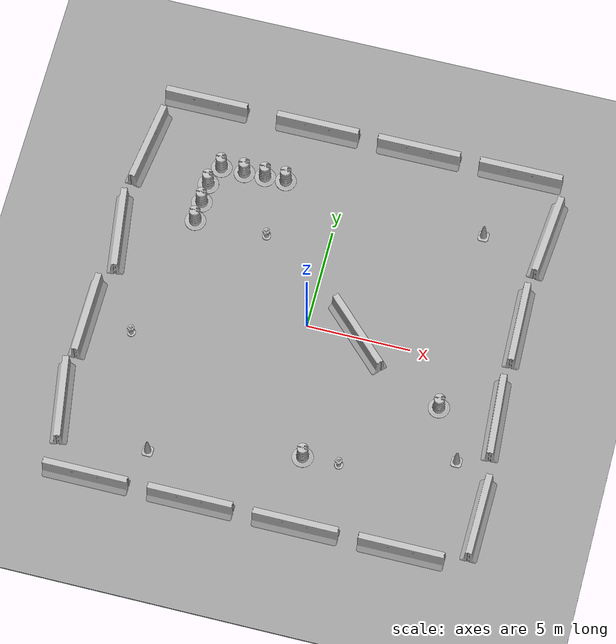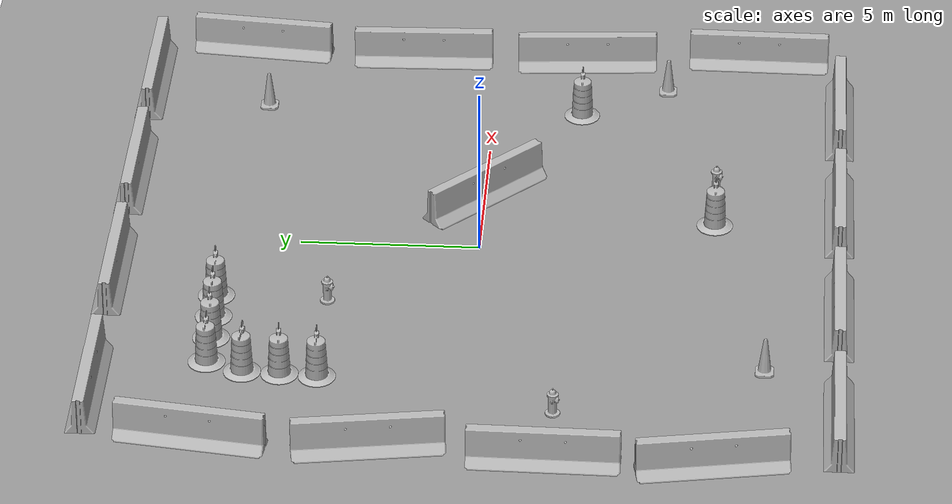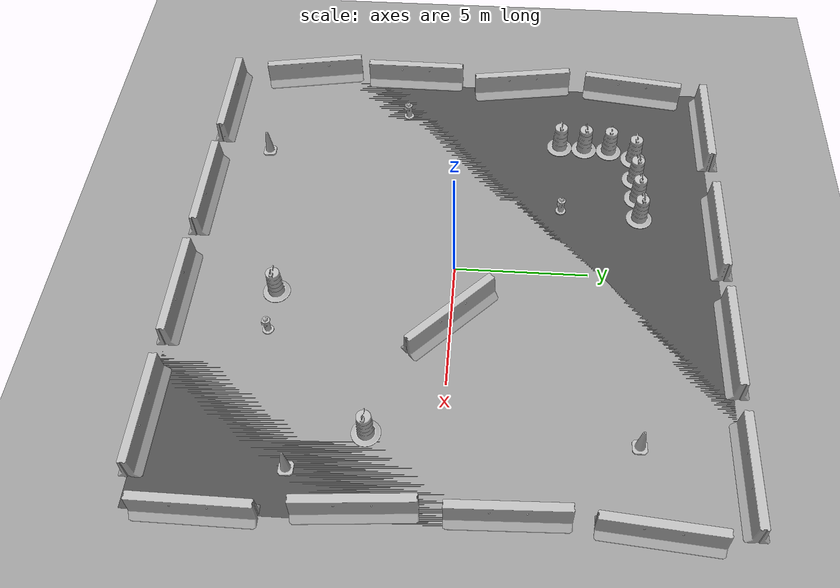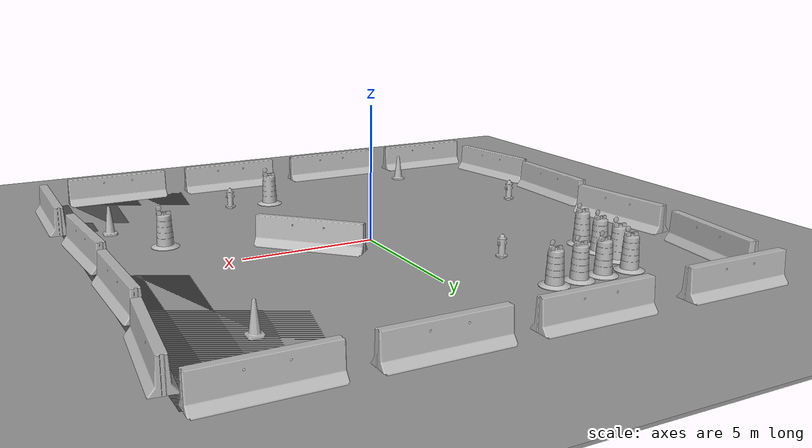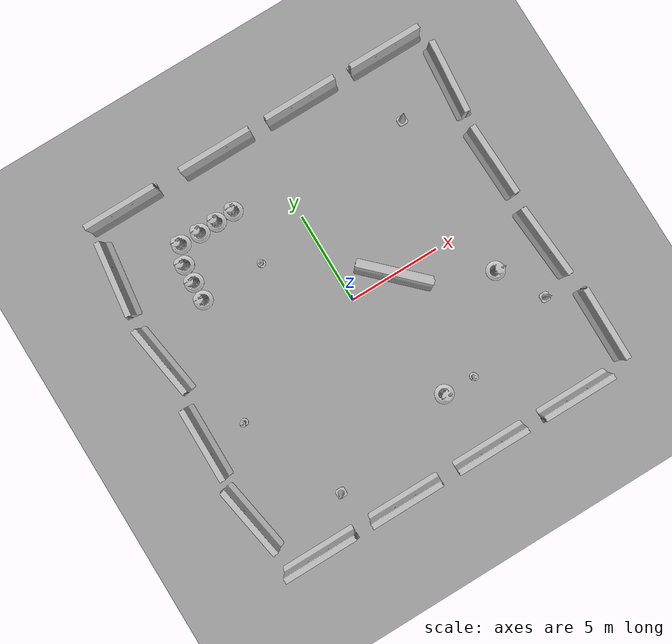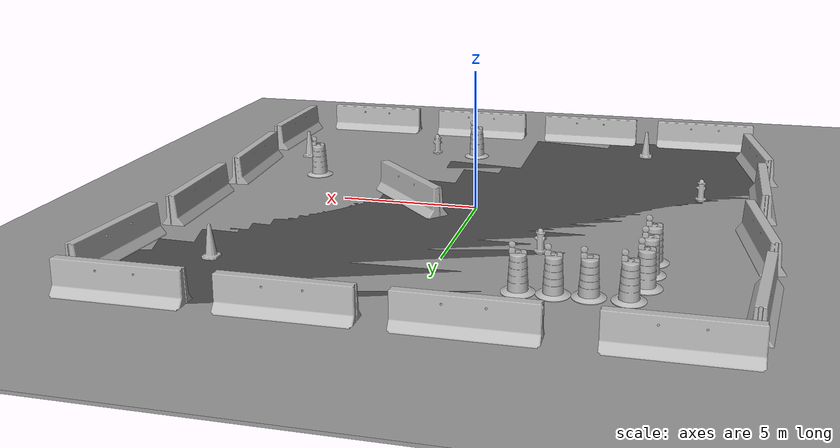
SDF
<sdf version="1.6">
 <world name="default">
  <light name="sun" type="directional">
   <pose>0 0 10 0 -0 0</pose>
   <diffuse>0.8 0.8 0.8 1</diffuse>
   <specular>0.2 0.2 0.2 1</specular>
   <attenuation>
    <range>1000</range>
    <constant>0.9</constant>
    <linear>0.01</linear>
    <quadratic>0.001</quadratic>
   </attenuation>
   <direction>-0.5 0.1 -0.9</direction>
  </light>
  <model name="ground_plane">
   <static>1</static>
   <link name="link">
    <collision name="collision">
     <geometry><plane><normal>0 0 1</normal><size>100 100</size></plane></geometry>
     <surface><friction><ode><mu>100</mu><mu2>50</mu2></ode></friction></surface>
    </collision>
    <visual name="visual">
     <cast_shadows>0</cast_shadows>
     <geometry><plane><normal>0 0 1</normal><size>100 100</size></plane></geometry>
     <material>
      <script><uri>file://media/materials/scripts/gazebo.material</uri><name>Gazebo/Grey</name></script>
     </material>
    </visual>
    <velocity_decay><linear>0</linear><angular>0</angular></velocity_decay>
   </link>
  </model>
  <physics name="default_physics" default="0" type="ode">
   <max_step_size>0.01</max_step_size>
   <real_time_factor>1</real_time_factor>
   <real_time_update_rate>100</real_time_update_rate>
  </physics>
  <scene><ambient>0.4 0.4 0.4 1</ambient><background>0.7 0.7 0.7 1</background><shadows>1</shadows></scene>
  <model name="jersey_barrier">
   <static>1</static>
   <link name="link">
    <visual name="visual">
     <geometry><mesh><uri>model://jersey_barrier/meshes/jersey_barrier.dae</uri></mesh></geometry>
    </visual>
    <collision name="upright">
     <pose>0 0 0.5715 0 -0 0</pose>
     <geometry><box><size>4.06542 0.3063 1.143</size></box></geometry>
    </collision>
    <collision name="base">
     <pose>0 0 0.032258 0 -0 0</pose>
     <geometry><box><size>4.06542 0.8107 0.064516</size></box></geometry>
    </collision>
    <collision name="base2">
     <pose>0 0 0.1 0 -0 0</pose>
     <geometry><box><size>4.06542 0.65 0.1</size></box></geometry>
    </collision>
    <collision name="base3">
     <pose>0 0 0.2 0 -0 0</pose>
     <geometry><box><size>4.06542 0.5 0.1</size></box></geometry>
    </collision>
    <collision name="left-angle">
     <pose>0 -0.224 0.2401 0.9 -0 0</pose>
     <geometry><box><size>4.06542 0.5 0.064516</size></box></geometry>
    </collision>
    <collision name="right-angle">
     <pose>0 0.224 0.2401 -0.9 0 0</pose>
     <geometry><box><size>4.06542 0.5 0.064516</size></box></geometry>
    </collision>
    <velocity_decay><linear>0</linear><angular>0</angular></velocity_decay>
   </link>
   <pose>-8 -10 0 0 -0 0</pose>
  </model>
  <model name="jersey_barrier_0">
   <static>1</static>
   <link name="link">
    <visual name="visual">
     <geometry><mesh><uri>model://jersey_barrier/meshes/jersey_barrier.dae</uri></mesh></geometry>
    </visual>
    <collision name="upright">
     <pose>0 0 0.5715 0 -0 0</pose>
     <geometry><box><size>4.06542 0.3063 1.143</size></box></geometry>
    </collision>
    <collision name="base">
     <pose>0 0 0.032258 0 -0 0</pose>
     <geometry><box><size>4.06542 0.8107 0.064516</size></box></geometry>
    </collision>
    <collision name="base2">
     <pose>0 0 0.1 0 -0 0</pose>
     <geometry><box><size>4.06542 0.65 0.1</size></box></geometry>
    </collision>
    <collision name="base3">
     <pose>0 0 0.2 0 -0 0</pose>
     <geometry><box><size>4.06542 0.5 0.1</size></box></geometry>
    </collision>
    <collision name="left-angle">
     <pose>0 -0.224 0.2401 0.9 -0 0</pose>
     <geometry><box><size>4.06542 0.5 0.064516</size></box></geometry>
    </collision>
    <collision name="right-angle">
     <pose>0 0.224 0.2401 -0.9 0 0</pose>
     <geometry><box><size>4.06542 0.5 0.064516</size></box></geometry>
    </collision>
    <velocity_decay><linear>0</linear><angular>0</angular></velocity_decay>
   </link>
   <pose>-3 -10 0 0 -0 0</pose>
  </model>
  <model name="jersey_barrier_1">
   <static>1</static>
   <link name="link">
    <visual name="visual">
     <geometry><mesh><uri>model://jersey_barrier/meshes/jersey_barrier.dae</uri></mesh></geometry>
    </visual>
    <collision name="upright">
     <pose>0 0 0.5715 0 -0 0</pose>
     <geometry><box><size>4.06542 0.3063 1.143</size></box></geometry>
    </collision>
    <collision name="base">
     <pose>0 0 0.032258 0 -0 0</pose>
     <geometry><box><size>4.06542 0.8107 0.064516</size></box></geometry>
    </collision>
    <collision name="base2">
     <pose>0 0 0.1 0 -0 0</pose>
     <geometry><box><size>4.06542 0.65 0.1</size></box></geometry>
    </collision>
    <collision name="base3">
     <pose>0 0 0.2 0 -0 0</pose>
     <geometry><box><size>4.06542 0.5 0.1</size></box></geometry>
    </collision>
    <collision name="left-angle">
     <pose>0 -0.224 0.2401 0.9 -0 0</pose>
     <geometry><box><size>4.06542 0.5 0.064516</size></box></geometry>
    </collision>
    <collision name="right-angle">
     <pose>0 0.224 0.2401 -0.9 0 0</pose>
     <geometry><box><size>4.06542 0.5 0.064516</size></box></geometry>
    </collision>
    <velocity_decay><linear>0</linear><angular>0</angular></velocity_decay>
   </link>
   <pose>2 -10 0 0 -0 0</pose>
  </model>
  <model name="jersey_barrier_2">
   <static>1</static>
   <link name="link">
    <visual name="visual">
     <geometry><mesh><uri>model://jersey_barrier/meshes/jersey_barrier.dae</uri></mesh></geometry>
    </visual>
    <collision name="upright">
     <pose>0 0 0.5715 0 -0 0</pose>
     <geometry><box><size>4.06542 0.3063 1.143</size></box></geometry>
    </collision>
    <collision name="base">
     <pose>0 0 0.032258 0 -0 0</pose>
     <geometry><box><size>4.06542 0.8107 0.064516</size></box></geometry>
    </collision>
    <collision name="base2">
     <pose>0 0 0.1 0 -0 0</pose>
     <geometry><box><size>4.06542 0.65 0.1</size></box></geometry>
    </collision>
    <collision name="base3">
     <pose>0 0 0.2 0 -0 0</pose>
     <geometry><box><size>4.06542 0.5 0.1</size></box></geometry>
    </collision>
    <collision name="left-angle">
     <pose>0 -0.224 0.2401 0.9 -0 0</pose>
     <geometry><box><size>4.06542 0.5 0.064516</size></box></geometry>
    </collision>
    <collision name="right-angle">
     <pose>0 0.224 0.2401 -0.9 0 0</pose>
     <geometry><box><size>4.06542 0.5 0.064516</size></box></geometry>
    </collision>
    <velocity_decay><linear>0</linear><angular>0</angular></velocity_decay>
   </link>
   <pose>7 -10 0 0 -0 0</pose>
  </model>
  <model name="jersey_barrier_3">
   <static>1</static>
   <link name="link">
    <visual name="visual">
     <geometry><mesh><uri>model://jersey_barrier/meshes/jersey_barrier.dae</uri></mesh></geometry>
    </visual>
    <collision name="upright">
     <pose>0 0 0.5715 0 -0 0</pose>
     <geometry><box><size>4.06542 0.3063 1.143</size></box></geometry>
    </collision>
    <collision name="base">
     <pose>0 0 0.032258 0 -0 0</pose>
     <geometry><box><size>4.06542 0.8107 0.064516</size></box></geometry>
    </collision>
    <collision name="base2">
     <pose>0 0 0.1 0 -0 0</pose>
     <geometry><box><size>4.06542 0.65 0.1</size></box></geometry>
    </collision>
    <collision name="base3">
     <pose>0 0 0.2 0 -0 0</pose>
     <geometry><box><size>4.06542 0.5 0.1</size></box></geometry>
    </collision>
    <collision name="left-angle">
     <pose>0 -0.224 0.2401 0.9 -0 0</pose>
     <geometry><box><size>4.06542 0.5 0.064516</size></box></geometry>
    </collision>
    <collision name="right-angle">
     <pose>0 0.224 0.2401 -0.9 0 0</pose>
     <geometry><box><size>4.06542 0.5 0.064516</size></box></geometry>
    </collision>
    <velocity_decay><linear>0</linear><angular>0</angular></velocity_decay>
   </link>
   <pose>-7.50675 10 0 0 -0 0</pose>
  </model>
  <model name="jersey_barrier_4">
   <static>1</static>
   <link name="link">
    <visual name="visual">
     <geometry><mesh><uri>model://jersey_barrier/meshes/jersey_barrier.dae</uri></mesh></geometry>
    </visual>
    <collision name="upright">
     <pose>0 0 0.5715 0 -0 0</pose>
     <geometry><box><size>4.06542 0.3063 1.143</size></box></geometry>
    </collision>
    <collision name="base">
     <pose>0 0 0.032258 0 -0 0</pose>
     <geometry><box><size>4.06542 0.8107 0.064516</size></box></geometry>
    </collision>
    <collision name="base2">
     <pose>0 0 0.1 0 -0 0</pose>
     <geometry><box><size>4.06542 0.65 0.1</size></box></geometry>
    </collision>
    <collision name="base3">
     <pose>0 0 0.2 0 -0 0</pose>
     <geometry><box><size>4.06542 0.5 0.1</size></box></geometry>
    </collision>
    <collision name="left-angle">
     <pose>0 -0.224 0.2401 0.9 -0 0</pose>
     <geometry><box><size>4.06542 0.5 0.064516</size></box></geometry>
    </collision>
    <collision name="right-angle">
     <pose>0 0.224 0.2401 -0.9 0 0</pose>
     <geometry><box><size>4.06542 0.5 0.064516</size></box></geometry>
    </collision>
    <velocity_decay><linear>0</linear><angular>0</angular></velocity_decay>
   </link>
   <pose>-2 10 0 0 -0 0</pose>
  </model>
  <model name="jersey_barrier_5">
   <static>1</static>
   <link name="link">
    <visual name="visual">
     <geometry><mesh><uri>model://jersey_barrier/meshes/jersey_barrier.dae</uri></mesh></geometry>
    </visual>
    <collision name="upright">
     <pose>0 0 0.5715 0 -0 0</pose>
     <geometry><box><size>4.06542 0.3063 1.143</size></box></geometry>
    </collision>
    <collision name="base">
     <pose>0 0 0.032258 0 -0 0</pose>
     <geometry><box><size>4.06542 0.8107 0.064516</size></box></geometry>
    </collision>
    <collision name="base2">
     <pose>0 0 0.1 0 -0 0</pose>
     <geometry><box><size>4.06542 0.65 0.1</size></box></geometry>
    </collision>
    <collision name="base3">
     <pose>0 0 0.2 0 -0 0</pose>
     <geometry><box><size>4.06542 0.5 0.1</size></box></geometry>
    </collision>
    <collision name="left-angle">
     <pose>0 -0.224 0.2401 0.9 -0 0</pose>
     <geometry><box><size>4.06542 0.5 0.064516</size></box></geometry>
    </collision>
    <collision name="right-angle">
     <pose>0 0.224 0.2401 -0.9 0 0</pose>
     <geometry><box><size>4.06542 0.5 0.064516</size></box></geometry>
    </collision>
    <velocity_decay><linear>0</linear><angular>0</angular></velocity_decay>
   </link>
   <pose>3 10 0 0 -0 0</pose>
  </model>
  <model name="jersey_barrier_6">
   <static>1</static>
   <link name="link">
    <visual name="visual">
     <geometry><mesh><uri>model://jersey_barrier/meshes/jersey_barrier.dae</uri></mesh></geometry>
    </visual>
    <collision name="upright">
     <pose>0 0 0.5715 0 -0 0</pose>
     <geometry><box><size>4.06542 0.3063 1.143</size></box></geometry>
    </collision>
    <collision name="base">
     <pose>0 0 0.032258 0 -0 0</pose>
     <geometry><box><size>4.06542 0.8107 0.064516</size></box></geometry>
    </collision>
    <collision name="base2">
     <pose>0 0 0.1 0 -0 0</pose>
     <geometry><box><size>4.06542 0.65 0.1</size></box></geometry>
    </collision>
    <collision name="base3">
     <pose>0 0 0.2 0 -0 0</pose>
     <geometry><box><size>4.06542 0.5 0.1</size></box></geometry>
    </collision>
    <collision name="left-angle">
     <pose>0 -0.224 0.2401 0.9 -0 0</pose>
     <geometry><box><size>4.06542 0.5 0.064516</size></box></geometry>
    </collision>
    <collision name="right-angle">
     <pose>0 0.224 0.2401 -0.9 0 0</pose>
     <geometry><box><size>4.06542 0.5 0.064516</size></box></geometry>
    </collision>
    <velocity_decay><linear>0</linear><angular>0</angular></velocity_decay>
   </link>
   <pose>8 10 0 0 -0 0</pose>
  </model>
  <model name="jersey_barrier_7">
   <static>1</static>
   <link name="link">
    <visual name="visual">
     <geometry><mesh><uri>model://jersey_barrier/meshes/jersey_barrier.dae</uri></mesh></geometry>
    </visual>
    <collision name="upright">
     <pose>0 0 0.5715 0 -0 0</pose>
     <geometry><box><size>4.06542 0.3063 1.143</size></box></geometry>
    </collision>
    <collision name="base">
     <pose>0 0 0.032258 0 -0 0</pose>
     <geometry><box><size>4.06542 0.8107 0.064516</size></box></geometry>
    </collision>
    <collision name="base2">
     <pose>0 0 0.1 0 -0 0</pose>
     <geometry><box><size>4.06542 0.65 0.1</size></box></geometry>
    </collision>
    <collision name="base3">
     <pose>0 0 0.2 0 -0 0</pose>
     <geometry><box><size>4.06542 0.5 0.1</size></box></geometry>
    </collision>
    <collision name="left-angle">
     <pose>0 -0.224 0.2401 0.9 -0 0</pose>
     <geometry><box><size>4.06542 0.5 0.064516</size></box></geometry>
    </collision>
    <collision name="right-angle">
     <pose>0 0.224 0.2401 -0.9 0 0</pose>
     <geometry><box><size>4.06542 0.5 0.064516</size></box></geometry>
    </collision>
    <velocity_decay><linear>0</linear><angular>0</angular></velocity_decay>
   </link>
   <pose>9.74902 -2.57759 0 0 -0 1.64</pose>
  </model>
  <model name="jersey_barrier_8">
   <static>1</static>
   <link name="link">
    <visual name="visual">
     <geometry><mesh><uri>model://jersey_barrier/meshes/jersey_barrier.dae</uri></mesh></geometry>
    </visual>
    <collision name="upright">
     <pose>0 0 0.5715 0 -0 0</pose>
     <geometry><box><size>4.06542 0.3063 1.143</size></box></geometry>
    </collision>
    <collision name="base">
     <pose>0 0 0.032258 0 -0 0</pose>
     <geometry><box><size>4.06542 0.8107 0.064516</size></box></geometry>
    </collision>
    <collision name="base2">
     <pose>0 0 0.1 0 -0 0</pose>
     <geometry><box><size>4.06542 0.65 0.1</size></box></geometry>
    </collision>
    <collision name="base3">
     <pose>0 0 0.2 0 -0 0</pose>
     <geometry><box><size>4.06542 0.5 0.1</size></box></geometry>
    </collision>
    <collision name="left-angle">
     <pose>0 -0.224 0.2401 0.9 -0 0</pose>
     <geometry><box><size>4.06542 0.5 0.064516</size></box></geometry>
    </collision>
    <collision name="right-angle">
     <pose>0 0.224 0.2401 -0.9 0 0</pose>
     <geometry><box><size>4.06542 0.5 0.064516</size></box></geometry>
    </collision>
    <velocity_decay><linear>0</linear><angular>0</angular></velocity_decay>
   </link>
   <pose>9.70141 2.24369 0 0 -0 1.6</pose>
  </model>
  <model name="jersey_barrier_9">
   <static>1</static>
   <link name="link">
    <visual name="visual">
     <geometry><mesh><uri>model://jersey_barrier/meshes/jersey_barrier.dae</uri></mesh></geometry>
    </visual>
    <collision name="upright">
     <pose>0 0 0.5715 0 -0 0</pose>
     <geometry><box><size>4.06542 0.3063 1.143</size></box></geometry>
    </collision>
    <collision name="base">
     <pose>0 0 0.032258 0 -0 0</pose>
     <geometry><box><size>4.06542 0.8107 0.064516</size></box></geometry>
    </collision>
    <collision name="base2">
     <pose>0 0 0.1 0 -0 0</pose>
     <geometry><box><size>4.06542 0.65 0.1</size></box></geometry>
    </collision>
    <collision name="base3">
     <pose>0 0 0.2 0 -0 0</pose>
     <geometry><box><size>4.06542 0.5 0.1</size></box></geometry>
    </collision>
    <collision name="left-angle">
     <pose>0 -0.224 0.2401 0.9 -0 0</pose>
     <geometry><box><size>4.06542 0.5 0.064516</size></box></geometry>
    </collision>
    <collision name="right-angle">
     <pose>0 0.224 0.2401 -0.9 0 0</pose>
     <geometry><box><size>4.06542 0.5 0.064516</size></box></geometry>
    </collision>
    <velocity_decay><linear>0</linear><angular>0</angular></velocity_decay>
   </link>
   <pose>-10.0607 -6.69856 0 0 0 -1.4</pose>
  </model>
  <model name="jersey_barrier_10">
   <static>1</static>
   <link name="link">
    <visual name="visual">
     <geometry><mesh><uri>model://jersey_barrier/meshes/jersey_barrier.dae</uri></mesh></geometry>
    </visual>
    <collision name="upright">
     <pose>0 0 0.5715 0 -0 0</pose>
     <geometry><box><size>4.06542 0.3063 1.143</size></box></geometry>
    </collision>
    <collision name="base">
     <pose>0 0 0.032258 0 -0 0</pose>
     <geometry><box><size>4.06542 0.8107 0.064516</size></box></geometry>
    </collision>
    <collision name="base2">
     <pose>0 0 0.1 0 -0 0</pose>
     <geometry><box><size>4.06542 0.65 0.1</size></box></geometry>
    </collision>
    <collision name="base3">
     <pose>0 0 0.2 0 -0 0</pose>
     <geometry><box><size>4.06542 0.5 0.1</size></box></geometry>
    </collision>
    <collision name="left-angle">
     <pose>0 -0.224 0.2401 0.9 -0 0</pose>
     <geometry><box><size>4.06542 0.5 0.064516</size></box></geometry>
    </collision>
    <collision name="right-angle">
     <pose>0 0.224 0.2401 -0.9 0 0</pose>
     <geometry><box><size>4.06542 0.5 0.064516</size></box></geometry>
    </collision>
    <velocity_decay><linear>0</linear><angular>0</angular></velocity_decay>
   </link>
   <pose>-10.0774 -2.27159 0 0 -0 1.56</pose>
  </model>
  <model name="jersey_barrier_11">
   <static>1</static>
   <link name="link">
    <visual name="visual">
     <geometry><mesh><uri>model://jersey_barrier/meshes/jersey_barrier.dae</uri></mesh></geometry>
    </visual>
    <collision name="upright">
     <pose>0 0 0.5715 0 -0 0</pose>
     <geometry><box><size>4.06542 0.3063 1.143</size></box></geometry>
    </collision>
    <collision name="base">
     <pose>0 0 0.032258 0 -0 0</pose>
     <geometry><box><size>4.06542 0.8107 0.064516</size></box></geometry>
    </collision>
    <collision name="base2">
     <pose>0 0 0.1 0 -0 0</pose>
     <geometry><box><size>4.06542 0.65 0.1</size></box></geometry>
    </collision>
    <collision name="base3">
     <pose>0 0 0.2 0 -0 0</pose>
     <geometry><box><size>4.06542 0.5 0.1</size></box></geometry>
    </collision>
    <collision name="left-angle">
     <pose>0 -0.224 0.2401 0.9 -0 0</pose>
     <geometry><box><size>4.06542 0.5 0.064516</size></box></geometry>
    </collision>
    <collision name="right-angle">
     <pose>0 0.224 0.2401 -0.9 0 0</pose>
     <geometry><box><size>4.06542 0.5 0.064516</size></box></geometry>
    </collision>
    <velocity_decay><linear>0</linear><angular>0</angular></velocity_decay>
   </link>
   <pose>-9.77013 2.34791 0 0 -0 1.72</pose>
  </model>
  <model name="jersey_barrier_12">
   <static>1</static>
   <link name="link">
    <visual name="visual">
     <geometry><mesh><uri>model://jersey_barrier/meshes/jersey_barrier.dae</uri></mesh></geometry>
    </visual>
    <collision name="upright">
     <pose>0 0 0.5715 0 -0 0</pose>
     <geometry><box><size>4.06542 0.3063 1.143</size></box></geometry>
    </collision>
    <collision name="base">
     <pose>0 0 0.032258 0 -0 0</pose>
     <geometry><box><size>4.06542 0.8107 0.064516</size></box></geometry>
    </collision>
    <collision name="base2">
     <pose>0 0 0.1 0 -0 0</pose>
     <geometry><box><size>4.06542 0.65 0.1</size></box></geometry>
    </collision>
    <collision name="base3">
     <pose>0 0 0.2 0 -0 0</pose>
     <geometry><box><size>4.06542 0.5 0.1</size></box></geometry>
    </collision>
    <collision name="left-angle">
     <pose>0 -0.224 0.2401 0.9 -0 0</pose>
     <geometry><box><size>4.06542 0.5 0.064516</size></box></geometry>
    </collision>
    <collision name="right-angle">
     <pose>0 0.224 0.2401 -0.9 0 0</pose>
     <geometry><box><size>4.06542 0.5 0.064516</size></box></geometry>
    </collision>
    <velocity_decay><linear>0</linear><angular>0</angular></velocity_decay>
   </link>
   <pose>10.0879 -7.62159 0 0 -0 1.56</pose>
  </model>
  <model name="jersey_barrier_13">
   <static>1</static>
   <link name="link">
    <visual name="visual">
     <geometry><mesh><uri>model://jersey_barrier/meshes/jersey_barrier.dae</uri></mesh></geometry>
    </visual>
    <collision name="upright">
     <pose>0 0 0.5715 0 -0 0</pose>
     <geometry><box><size>4.06542 0.3063 1.143</size></box></geometry>
    </collision>
    <collision name="base">
     <pose>0 0 0.032258 0 -0 0</pose>
     <geometry><box><size>4.06542 0.8107 0.064516</size></box></geometry>
    </collision>
    <collision name="base2">
     <pose>0 0 0.1 0 -0 0</pose>
     <geometry><box><size>4.06542 0.65 0.1</size></box></geometry>
    </collision>
    <collision name="base3">
     <pose>0 0 0.2 0 -0 0</pose>
     <geometry><box><size>4.06542 0.5 0.1</size></box></geometry>
    </collision>
    <collision name="left-angle">
     <pose>0 -0.224 0.2401 0.9 -0 0</pose>
     <geometry><box><size>4.06542 0.5 0.064516</size></box></geometry>
    </collision>
    <collision name="right-angle">
     <pose>0 0.224 0.2401 -0.9 0 0</pose>
     <geometry><box><size>4.06542 0.5 0.064516</size></box></geometry>
    </collision>
    <velocity_decay><linear>0</linear><angular>0</angular></velocity_decay>
   </link>
   <pose>10 7 0 0 -0 1.48</pose>
  </model>
  <model name="jersey_barrier_14">
   <static>1</static>
   <link name="link">
    <visual name="visual">
     <geometry><mesh><uri>model://jersey_barrier/meshes/jersey_barrier.dae</uri></mesh></geometry>
    </visual>
    <collision name="upright">
     <pose>0 0 0.5715 0 -0 0</pose>
     <geometry><box><size>4.06542 0.3063 1.143</size></box></geometry>
    </collision>
    <collision name="base">
     <pose>0 0 0.032258 0 -0 0</pose>
     <geometry><box><size>4.06542 0.8107 0.064516</size></box></geometry>
    </collision>
    <collision name="base2">
     <pose>0 0 0.1 0 -0 0</pose>
     <geometry><box><size>4.06542 0.65 0.1</size></box></geometry>
    </collision>
    <collision name="base3">
     <pose>0 0 0.2 0 -0 0</pose>
     <geometry><box><size>4.06542 0.5 0.1</size></box></geometry>
    </collision>
    <collision name="left-angle">
     <pose>0 -0.224 0.2401 0.9 -0 0</pose>
     <geometry><box><size>4.06542 0.5 0.064516</size></box></geometry>
    </collision>
    <collision name="right-angle">
     <pose>0 0.224 0.2401 -0.9 0 0</pose>
     <geometry><box><size>4.06542 0.5 0.064516</size></box></geometry>
    </collision>
    <velocity_decay><linear>0</linear><angular>0</angular></velocity_decay>
   </link>
   <pose>-9.64482 7.05946 0 0 -0 1.44</pose>
  </model>
  <model name="fire_hydrant">
   <static>1</static>
   <link name="link">
    <collision name="collision">
     <geometry><mesh><uri>model://fire_hydrant/meshes/fire_hydrant.dae</uri></mesh></geometry>
    </collision>
    <visual name="visual">
     <geometry><mesh><uri>model://fire_hydrant/meshes/fire_hydrant.dae</uri></mesh></geometry>
    </visual>
    <velocity_decay><linear>0</linear><angular>0</angular></velocity_decay>
   </link>
   <pose>3.18024 -6.51118 0 0 -0 0</pose>
  </model>
  <model name="fire_hydrant_0">
   <static>1</static>
   <link name="link">
    <collision name="collision">
     <geometry><mesh><uri>model://fire_hydrant/meshes/fire_hydrant.dae</uri></mesh></geometry>
    </collision>
    <visual name="visual">
     <geometry><mesh><uri>model://fire_hydrant/meshes/fire_hydrant.dae</uri></mesh></geometry>
    </visual>
    <velocity_decay><linear>0</linear><angular>0</angular></velocity_decay>
   </link>
   <pose>-3 4 0 0 -0 0</pose>
  </model>
  <model name="fire_hydrant_1">
   <static>1</static>
   <link name="link">
    <collision name="collision">
     <geometry><mesh><uri>model://fire_hydrant/meshes/fire_hydrant.dae</uri></mesh></geometry>
    </collision>
    <visual name="visual">
     <geometry><mesh><uri>model://fire_hydrant/meshes/fire_hydrant.dae</uri></mesh></geometry>
    </visual>
    <velocity_decay><linear>0</linear><angular>0</angular></velocity_decay>
   </link>
   <pose>-7.90686 -2.41363 0 0 -0 0</pose>
  </model>
  <model name="jersey_barrier_15">
   <static>1</static>
   <link name="link">
    <visual name="visual">
     <geometry><mesh><uri>model://jersey_barrier/meshes/jersey_barrier.dae</uri></mesh></geometry>
    </visual>
    <collision name="upright">
     <pose>0 0 0.5715 0 -0 0</pose>
     <geometry><box><size>4.06542 0.3063 1.143</size></box></geometry>
    </collision>
    <collision name="base">
     <pose>0 0 0.032258 0 -0 0</pose>
     <geometry><box><size>4.06542 0.8107 0.064516</size></box></geometry>
    </collision>
    <collision name="base2">
     <pose>0 0 0.1 0 -0 0</pose>
     <geometry><box><size>4.06542 0.65 0.1</size></box></geometry>
    </collision>
    <collision name="base3">
     <pose>0 0 0.2 0 -0 0</pose>
     <geometry><box><size>4.06542 0.5 0.1</size></box></geometry>
    </collision>
    <collision name="left-angle">
     <pose>0 -0.224 0.2401 0.9 -0 0</pose>
     <geometry><box><size>4.06542 0.5 0.064516</size></box></geometry>
    </collision>
    <collision name="right-angle">
     <pose>0 0.224 0.2401 -0.9 0 0</pose>
     <geometry><box><size>4.06542 0.5 0.064516</size></box></geometry>
    </collision>
    <velocity_decay><linear>0</linear><angular>0</angular></velocity_decay>
   </link>
   <pose>2.45495 0 0 0 -0 2.36</pose>
  </model>
  <model name="Construction Cone">
   <link name="link">
    <collision name="collision">
     <geometry>
      <mesh><scale>10 10 10</scale><uri>model://construction_cone/meshes/construction_cone.dae</uri></mesh>
     </geometry>
    </collision>
    <visual name="visual">
     <geometry>
      <mesh><scale>10 10 10</scale><uri>model://construction_cone/meshes/construction_cone.dae</uri></mesh>
     </geometry>
    </visual>
    <velocity_decay><linear>0</linear><angular>0</angular></velocity_decay>
    <inertial>
     <inertia><ixx>1</ixx><ixy>0</ixy><ixz>0</ixz><iyy>1</iyy><iyz>0</iyz><izz>1</izz></inertia>
     <mass>1</mass>
    </inertial>
   </link>
   <pose>-5.59121 -8 0.04902 1e-06 -0 6e-06</pose>
   <static>0</static>
  </model>
  <model name="Construction Barrel">
   <link name="link">
    <inertial>
     <pose>0 0 0.4 0 -0 0</pose>
     <mass>500</mass>
     <inertia><ixx>51.2096</ixx><iyy>51.2096</iyy><izz>25</izz><ixy>0</ixy><ixz>0</ixz><iyz>0</iyz></inertia>
    </inertial>
    <collision name="collision">
     <geometry><mesh><uri>model://construction_barrel/meshes/construction_barrel.dae</uri></mesh></geometry>
    </collision>
    <visual name="visual">
     <geometry><mesh><uri>model://construction_barrel/meshes/construction_barrel.dae</uri></mesh></geometry>
    </visual>
    <velocity_decay><linear>0</linear><angular>0</angular></velocity_decay>
   </link>
   <pose>7.00012 -2.54616 0.049897 -0.000203 -0.000385 0.000143</pose>
   <static>0</static>
  </model>
  <model name="Construction Cone_0">
   <link name="link">
    <collision name="collision">
     <geometry>
      <mesh><scale>10 10 10</scale><uri>model://construction_cone/meshes/construction_cone.dae</uri></mesh>
     </geometry>
    </collision>
    <visual name="visual">
     <geometry>
      <mesh><scale>10 10 10</scale><uri>model://construction_cone/meshes/construction_cone.dae</uri></mesh>
     </geometry>
    </visual>
    <velocity_decay><linear>0</linear><angular>0</angular></velocity_decay>
    <inertial>
     <inertia><ixx>1</ixx><ixy>0</ixy><ixz>0</ixz><iyy>1</iyy><iyz>0</iyz><izz>1</izz></inertia>
     <mass>1</mass>
    </inertial>
   </link>
   <pose>6.99685 6.55732 0.04902 1e-06 -0 -0.007006</pose>
   <static>0</static>
  </model>
  <model name="Construction Barrel_0">
   <link name="link">
    <inertial>
     <pose>0 0 0.4 0 -0 0</pose>
     <mass>500</mass>
     <inertia><ixx>51.2096</ixx><iyy>51.2096</iyy><izz>25</izz><ixy>0</ixy><ixz>0</ixz><iyz>0</iyz></inertia>
    </inertial>
    <collision name="collision">
     <geometry><mesh><uri>model://construction_barrel/meshes/construction_barrel.dae</uri></mesh></geometry>
    </collision>
    <visual name="visual">
     <geometry><mesh><uri>model://construction_barrel/meshes/construction_barrel.dae</uri></mesh></geometry>
    </visual>
    <velocity_decay><linear>0</linear><angular>0</angular></velocity_decay>
   </link>
   <pose>1.45184 -6.5111 0.04988 0.000478 -6e-06 -0.00022</pose>
   <static>0</static>
  </model>
  <model name="asphalt_plane">
   <static>1</static>
   <link name="link">
    <collision name="collision"><geometry><box><size>20 20 0.1</size></box></geometry></collision>
    <visual name="visual">
     <cast_shadows>0</cast_shadows>
     <geometry><box><size>20 20 0.1</size></box></geometry>
     <material>
      <script>
       <uri>model://asphalt_plane/materials/scripts</uri>
       <uri>model://asphalt_plane/materials/textures</uri>
       <name>vrc/asphalt</name>
      </script>
     </material>
    </visual>
    <velocity_decay><linear>0</linear><angular>0</angular></velocity_decay>
   </link>
   <pose>0.076733 -0.110379 0 0 -0 0</pose>
  </model>
  <model name="Construction Barrel_1">
   <link name="link">
    <inertial>
     <pose>0 0 0.4 0 -0 0</pose>
     <mass>500</mass>
     <inertia><ixx>51.2096</ixx><iyy>51.2096</iyy><izz>25</izz><ixy>0</ixy><ixz>0</ixz><iyz>0</iyz></inertia>
    </inertial>
    <collision name="collision">
     <geometry><mesh><uri>model://construction_barrel/meshes/construction_barrel.dae</uri></mesh></geometry>
    </collision>
    <visual name="visual">
     <geometry><mesh><uri>model://construction_barrel/meshes/construction_barrel.dae</uri></mesh></geometry>
    </visual>
    <velocity_decay><linear>0</linear><angular>0</angular></velocity_decay>
   </link>
   <pose>-6.50447 3.98304 0.049894 -0.000209 -0.000391 -0.009524</pose>
   <static>0</static>
  </model>
  <model name="Construction Barrel_2">
   <link name="link">
    <inertial>
     <pose>0 0 0.4 0 -0 0</pose>
     <mass>500</mass>
     <inertia><ixx>51.2096</ixx><iyy>51.2096</iyy><izz>25</izz><ixy>0</ixy><ixz>0</ixz><iyz>0</iyz></inertia>
    </inertial>
    <collision name="collision">
     <geometry><mesh><uri>model://construction_barrel/meshes/construction_barrel.dae</uri></mesh></geometry>
    </collision>
    <visual name="visual">
     <geometry><mesh><uri>model://construction_barrel/meshes/construction_barrel.dae</uri></mesh></geometry>
    </visual>
    <velocity_decay><linear>0</linear><angular>0</angular></velocity_decay>
   </link>
   <pose>-6.45056 4.99658 0.049878 0.000484 -4e-06 0.064779</pose>
   <static>0</static>
  </model>
  <model name="Construction Barrel_3">
   <link name="link">
    <inertial>
     <pose>0 0 0.4 0 -0 0</pose>
     <mass>500</mass>
     <inertia><ixx>51.2096</ixx><iyy>51.2096</iyy><izz>25</izz><ixy>0</ixy><ixz>0</ixz><iyz>0</iyz></inertia>
    </inertial>
    <collision name="collision">
     <geometry><mesh><uri>model://construction_barrel/meshes/construction_barrel.dae</uri></mesh></geometry>
    </collision>
    <visual name="visual">
     <geometry><mesh><uri>model://construction_barrel/meshes/construction_barrel.dae</uri></mesh></geometry>
    </visual>
    <velocity_decay><linear>0</linear><angular>0</angular></velocity_decay>
   </link>
   <pose>-6.40164 6.01134 0.04993 0.000326 5.3e-05 -0.120784</pose>
   <static>0</static>
  </model>
  <model name="Construction Barrel_4">
   <link name="link">
    <inertial>
     <pose>0 0 0.4 0 -0 0</pose>
     <mass>500</mass>
     <inertia><ixx>51.2096</ixx><iyy>51.2096</iyy><izz>25</izz><ixy>0</ixy><ixz>0</ixz><iyz>0</iyz></inertia>
    </inertial>
    <collision name="collision">
     <geometry><mesh><uri>model://construction_barrel/meshes/construction_barrel.dae</uri></mesh></geometry>
    </collision>
    <visual name="visual">
     <geometry><mesh><uri>model://construction_barrel/meshes/construction_barrel.dae</uri></mesh></geometry>
    </visual>
    <velocity_decay><linear>0</linear><angular>0</angular></velocity_decay>
   </link>
   <pose>-6.00614 7.0091 0.049883 -0.00023 -0.000412 -0.049674</pose>
   <static>0</static>
  </model>
  <model name="Construction Barrel_5">
   <link name="link">
    <inertial>
     <pose>0 0 0.4 0 -0 0</pose>
     <mass>500</mass>
     <inertia><ixx>51.2096</ixx><iyy>51.2096</iyy><izz>25</izz><ixy>0</ixy><ixz>0</ixz><iyz>0</iyz></inertia>
    </inertial>
    <collision name="collision">
     <geometry><mesh><uri>model://construction_barrel/meshes/construction_barrel.dae</uri></mesh></geometry>
    </collision>
    <visual name="visual">
     <geometry><mesh><uri>model://construction_barrel/meshes/construction_barrel.dae</uri></mesh></geometry>
    </visual>
    <velocity_decay><linear>0</linear><angular>0</angular></velocity_decay>
   </link>
   <pose>-4.87605 7.00788 0.049905 3e-06 -0.000384 0.145804</pose>
   <static>0</static>
  </model>
  <model name="Construction Barrel_6">
   <link name="link">
    <inertial>
     <pose>0 0 0.4 0 -0 0</pose>
     <mass>500</mass>
     <inertia><ixx>51.2096</ixx><iyy>51.2096</iyy><izz>25</izz><ixy>0</ixy><ixz>0</ixz><iyz>0</iyz></inertia>
    </inertial>
    <collision name="collision">
     <geometry><mesh><uri>model://construction_barrel/meshes/construction_barrel.dae</uri></mesh></geometry>
    </collision>
    <visual name="visual">
     <geometry><mesh><uri>model://construction_barrel/meshes/construction_barrel.dae</uri></mesh></geometry>
    </visual>
    <velocity_decay><linear>0</linear><angular>0</angular></velocity_decay>
   </link>
   <pose>-3.86116 7.04769 0.049959 0.000225 4.1e-05 0.034978</pose>
   <static>0</static>
  </model>
  <model name="Construction Barrel_7">
   <link name="link">
    <inertial>
     <pose>0 0 0.4 0 -0 0</pose>
     <mass>500</mass>
     <inertia><ixx>51.2096</ixx><iyy>51.2096</iyy><izz>25</izz><ixy>0</ixy><ixz>0</ixz><iyz>0</iyz></inertia>
    </inertial>
    <collision name="collision">
     <geometry><mesh><uri>model://construction_barrel/meshes/construction_barrel.dae</uri></mesh></geometry>
    </collision>
    <visual name="visual">
     <geometry><mesh><uri>model://construction_barrel/meshes/construction_barrel.dae</uri></mesh></geometry>
    </visual>
    <velocity_decay><linear>0</linear><angular>0</angular></velocity_decay>
   </link>
   <pose>-2.844 7.07543 0.049922 -0.000154 -0.000325 0.070709</pose>
   <static>0</static>
  </model>
  <model name="Construction Cone_1">
   <link name="link">
    <collision name="collision">
     <geometry>
      <mesh><scale>10 10 10</scale><uri>model://construction_cone/meshes/construction_cone.dae</uri></mesh>
     </geometry>
    </collision>
    <visual name="visual">
     <geometry>
      <mesh><scale>10 10 10</scale><uri>model://construction_cone/meshes/construction_cone.dae</uri></mesh>
     </geometry>
    </visual>
    <velocity_decay><linear>0</linear><angular>0</angular></velocity_decay>
    <inertial>
     <inertia><ixx>1</ixx><ixy>0</ixy><ixz>0</ixz><iyy>1</iyy><iyz>0</iyz><izz>1</izz></inertia>
     <mass>1</mass>
    </inertial>
   </link>
   <pose>8.42887 -5 0.04902 1e-06 -0 6e-06</pose>
   <static>0</static>
  </model>
  <gravity>0 0 -9.8</gravity>
  <magnetic_field>6e-06 2.3e-05 -4.2e-05</magnetic_field>
  <atmosphere type="adiabatic"/>
  <audio><device>default</device></audio>
  <spherical_coordinates>
   <surface_model>EARTH_WGS84</surface_model>
   <latitude_deg>0</latitude_deg>
   <longitude_deg>0</longitude_deg>
   <elevation>0</elevation>
   <heading_deg>0</heading_deg>
  </spherical_coordinates>
  <model name="ground_plane_0">
   <static>1</static>
   <link name="link">
    <collision name="collision">
     <geometry><plane><normal>0 0 1</normal><size>100 100</size></plane></geometry>
     <surface><friction><ode><mu>100</mu><mu2>50</mu2></ode></friction></surface>
    </collision>
    <visual name="visual">
     <cast_shadows>0</cast_shadows>
     <geometry><plane><normal>0 0 1</normal><size>100 100</size></plane></geometry>
     <material>
      <script><uri>file://media/materials/scripts/gazebo.material</uri><name>Gazebo/Grey</name></script>
     </material>
    </visual>
   </link>
   <pose>-3.56997 2.91435 0 0 -0 0</pose>
  </model>
 </world>
</sdf>
